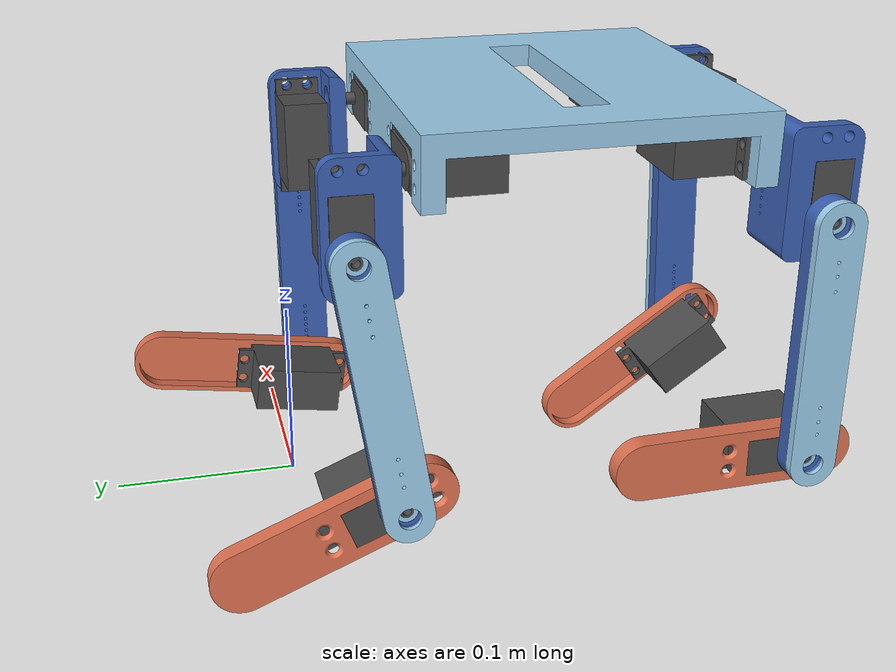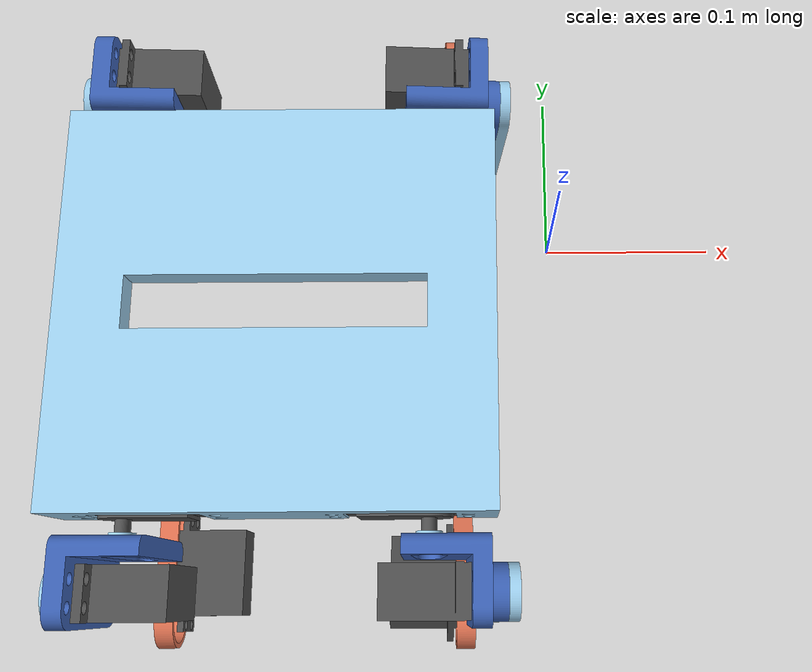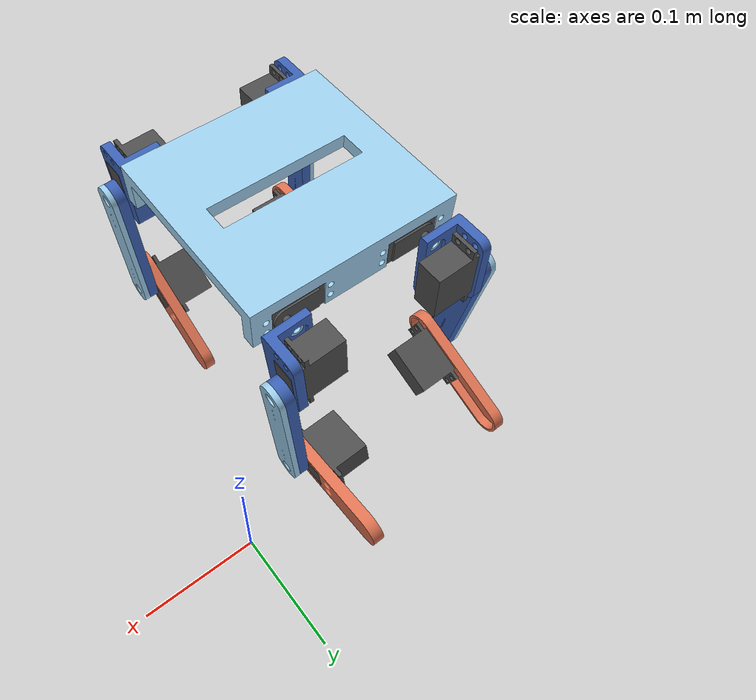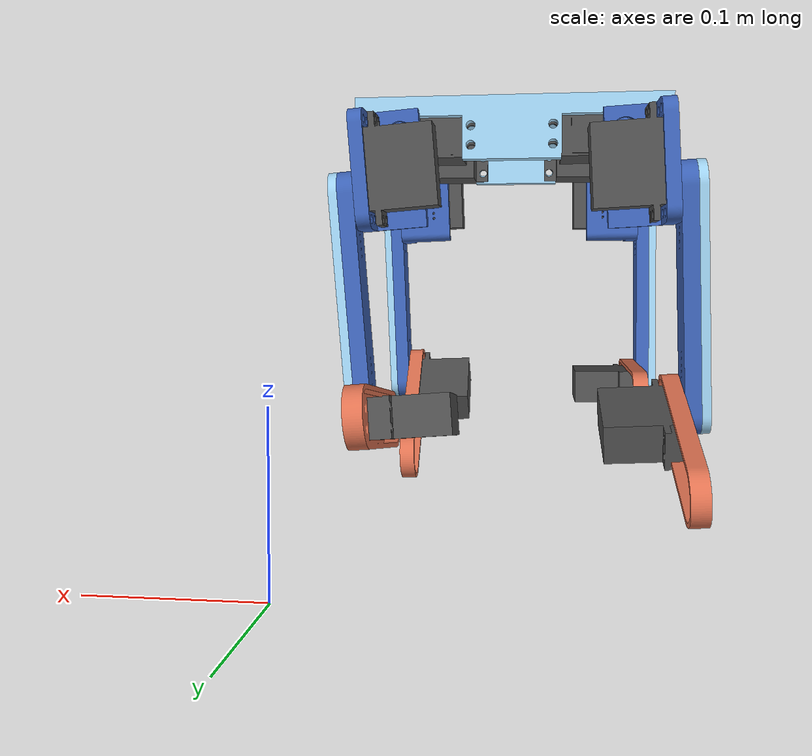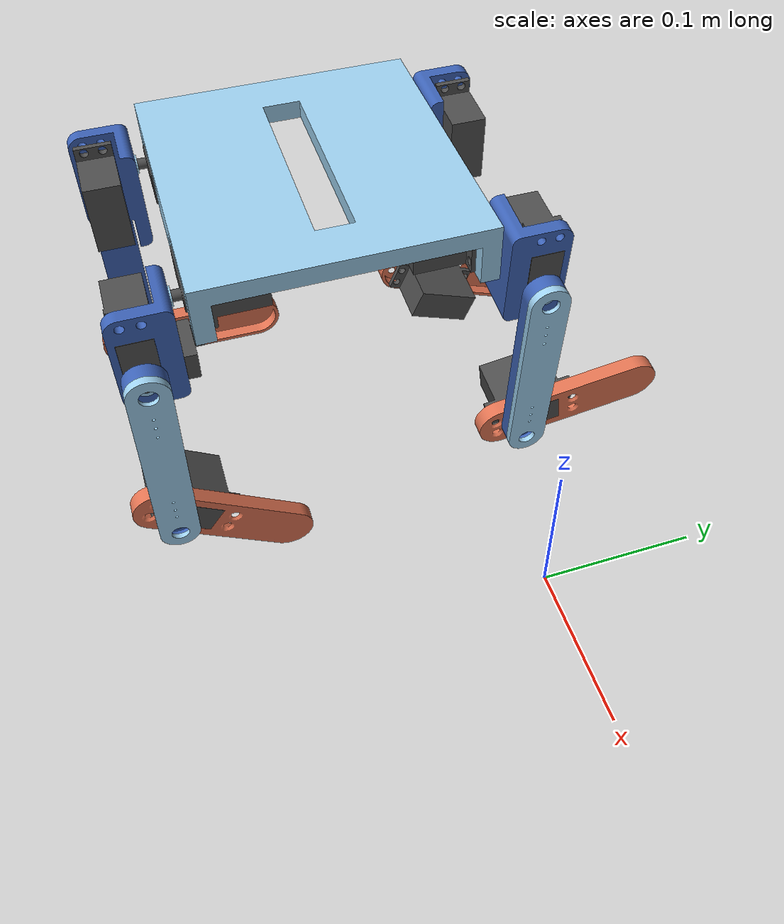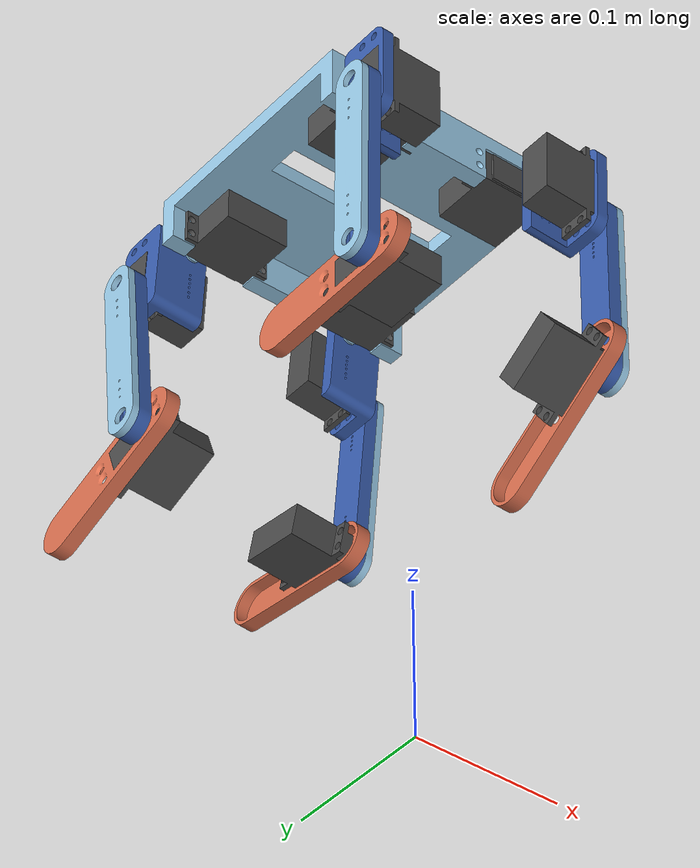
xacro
<?xml version="1.0"?>
<robot xmlns:xacro="http://www.ros.org/wiki/xacro" name="catbot">
    <link name="mainbody">
        <visual>
            <origin xyz="-0.039050405919551792189 -0.1803153499960899464 0.25655598676204682818" rpy="3.141592653589793116 -8.3266726846886728206e-17 3.141592653589793116" />
            <geometry>
                <mesh filename="base.stl"/>
            </geometry>
            <material name="base_material">
                <color rgba="0.61568627450980395466 0.81176470588235294379 0.92941176470588238168 1.0"/>
            </material>
        </visual>
        <collision>
            <origin xyz="-0.039050405919551792189 -0.1803153499960899464 0.25655598676204682818" rpy="3.141592653589793116 -8.3266726846886728206e-17 3.141592653589793116" />
            <geometry>
                <mesh filename="base.stl"/>
            </geometry>
        </collision>
        <visual>
            <origin xyz="-0.16405040591955188933 -0.1405903499960899361 0.23555598676204680952" rpy="0 8.3266726846886728206e-17 0" />
            <geometry>
                <mesh filename="servo.stl"/>
            </geometry>
            <material name="servo_material">
                <color rgba="0.30196078431372547213 0.30196078431372547213 0.30196078431372547213 1.0"/>
            </material>
        </visual>
        <collision>
            <origin xyz="-0.16405040591955188933 -0.1405903499960899361 0.23555598676204680952" rpy="0 8.3266726846886728206e-17 0" />
            <geometry>
                <mesh filename="servo.stl"/>
            </geometry>
        </collision>
        <visual>
            <origin xyz="-0.16405040591955183382 -0.070040349996089934503 0.23555598676204680952" rpy="3.141592653589793116 8.326672684688671588e-17 1.2325951644078224615e-32" />
            <geometry>
                <mesh filename="servo.stl"/>
            </geometry>
            <material name="servo_material">
                <color rgba="0.30196078431372547213 0.30196078431372547213 0.30196078431372547213 1.0"/>
            </material>
        </visual>
        <collision>
            <origin xyz="-0.16405040591955183382 -0.070040349996089934503 0.23555598676204680952" rpy="3.141592653589793116 8.326672684688671588e-17 1.2325951644078224615e-32" />
            <geometry>
                <mesh filename="servo.stl"/>
            </geometry>
        </collision>
        <visual>
            <origin xyz="-0.074050405919551823275 -0.070040349996089962259 0.23555598676204683728" rpy="8.5528470722950151288e-48 -8.3266726846886691228e-17 -3.141592653589793116" />
            <geometry>
                <mesh filename="servo.stl"/>
            </geometry>
            <material name="servo_material">
                <color rgba="0.30196078431372547213 0.30196078431372547213 0.30196078431372547213 1.0"/>
            </material>
        </visual>
        <collision>
            <origin xyz="-0.074050405919551823275 -0.070040349996089962259 0.23555598676204683728" rpy="8.5528470722950151288e-48 -8.3266726846886691228e-17 -3.141592653589793116" />
            <geometry>
                <mesh filename="servo.stl"/>
            </geometry>
        </collision>
        <visual>
            <origin xyz="-0.074050405919551823275 -0.1405903499960899361 0.23555598676204680952" rpy="3.141592653589793116 -8.3266726846886728206e-17 3.141592653589793116" />
            <geometry>
                <mesh filename="servo.stl"/>
            </geometry>
            <material name="servo_material">
                <color rgba="0.30196078431372547213 0.30196078431372547213 0.30196078431372547213 1.0"/>
            </material>
        </visual>
        <collision>
            <origin xyz="-0.074050405919551823275 -0.1405903499960899361 0.23555598676204680952" rpy="3.141592653589793116 -8.3266726846886728206e-17 3.141592653589793116" />
            <geometry>
                <mesh filename="servo.stl"/>
            </geometry>
        </collision>
        <inertial>
            <origin xyz="-0.11905040591955190488 -0.10531534999608997694 0.24437579780986765088" rpy="0 0 0"/>
            <mass value="0.49394823622559713705" />
            <inertia ixx="0.0013840746330419674819" ixy="-1.084202172485504434e-19" ixz="7.7927031147395631194e-20" iyy="0.0011298530871705141868" iyz="-6.7762635780344027125e-21" izz="0.0024313774487411490312" />
        </inertial>
    </link>

    <link name="hipsubasm">
        <visual>
            <origin xyz="0.009999999999999995004 -0.017290000000000027569 -0.016249999999999986677" rpy="-1.570796326794896558 -1.570796326794896336 0" />
            <geometry>
                <mesh filename="hipjoint.stl"/>
            </geometry>
            <material name="hipjoint_material">
                <color rgba="0.2313725490196078538 0.38039215686274507888 0.7058823529411765163 1.0"/>
            </material>
        </visual>
        <collision>
            <origin xyz="0.009999999999999995004 -0.017290000000000027569 -0.016249999999999986677" rpy="-1.570796326794896558 -1.570796326794896336 0" />
            <geometry>
                <mesh filename="hipjoint.stl"/>
            </geometry>
        </collision>
        <visual>
            <origin xyz="0.018199999999999022515 -0.018114999999999603641 -0.019999999999999962252" rpy="3.1415926535897926719 -1.4578757702189871054e-16 1.5707963267948981123" />
            <geometry>
                <mesh filename="servo.stl"/>
            </geometry>
            <material name="servo_material">
                <color rgba="0.30196078431372547213 0.30196078431372547213 0.30196078431372547213 1.0"/>
            </material>
        </visual>
        <collision>
            <origin xyz="0.018199999999999022515 -0.018114999999999603641 -0.019999999999999962252" rpy="3.1415926535897926719 -1.4578757702189871054e-16 1.5707963267948981123" />
            <geometry>
                <mesh filename="servo.stl"/>
            </geometry>
        </collision>
        <visual>
            <origin xyz="-1.3877787807814456755e-17 -2.7755575615628913511e-17 0.0010000000000000008882" rpy="3.141592653589793116 -1.4578757702189525927e-16 1.5707963267948976682" />
            <geometry>
                <mesh filename="servohornreplacement.stl"/>
            </geometry>
            <material name="servohornreplacement_material">
                <color rgba="0.61568627450980395466 0.81176470588235294379 0.92941176470588238168 1.0"/>
            </material>
        </visual>
        <collision>
            <origin xyz="-1.3877787807814456755e-17 -2.7755575615628913511e-17 0.0010000000000000008882" rpy="3.141592653589793116 -1.4578757702189525927e-16 1.5707963267948976682" />
            <geometry>
                <mesh filename="servohornreplacement.stl"/>
            </geometry>
        </collision>
        <inertial>
            <origin xyz="-0.0044848749450654163545 -0.0179728161393723114 -0.016098061730134432396" rpy="0 0 0"/>
            <mass value="0.066123103332140956145" />
            <inertia ixx="1.8384618926580121391e-05" ixy="9.1018315654018470232e-08" ixz="5.6546937137399404566e-07" iyy="1.4043653005047446121e-05" iyz="-8.5254427329847590665e-08" izz="2.2086490787454833752e-05" />
        </inertial>
    </link>

    <link name="toplegasm">
        <visual>
            <origin xyz="2.7755575615628913511e-17 2.7755575615628913511e-17 -0.0057999999999999926614" rpy="6.4535680925625176344e-18 1.1053377210876282197e-19 -1.1334232708083540627e-18" />
            <geometry>
                <mesh filename="servohornreplacement.stl"/>
            </geometry>
            <material name="servohornreplacement_material">
                <color rgba="0.61568627450980395466 0.81176470588235294379 0.92941176470588238168 1.0"/>
            </material>
        </visual>
        <collision>
            <origin xyz="2.7755575615628913511e-17 2.7755575615628913511e-17 -0.0057999999999999926614" rpy="6.4535680925625176344e-18 1.1053377210876282197e-19 -1.1334232708083540627e-18" />
            <geometry>
                <mesh filename="servohornreplacement.stl"/>
            </geometry>
        </collision>
        <visual>
            <origin xyz="-2.7755575615628913511e-17 0.055999999999999994227 -0.0078999999999999695466" rpy="1.5707963267949027752 9.7283936021392146528e-17 4.2901527244577466862e-16" />
            <geometry>
                <mesh filename="toplegcover.stl"/>
            </geometry>
            <material name="toplegcover_material">
                <color rgba="0.61568627450980395466 0.81176470588235294379 0.92941176470588238168 1.0"/>
            </material>
        </visual>
        <collision>
            <origin xyz="-2.7755575615628913511e-17 0.055999999999999994227 -0.0078999999999999695466" rpy="1.5707963267949027752 9.7283936021392146528e-17 4.2901527244577466862e-16" />
            <geometry>
                <mesh filename="toplegcover.stl"/>
            </geometry>
        </collision>
        <visual>
            <origin xyz="-2.7755575615628913511e-17 0.11199999999999990519 -0.0057999999999999371503" rpy="-2.8269602114824775556e-16 -1.0911851513935710802e-15 -7.0458042872546368885e-16" />
            <geometry>
                <mesh filename="servohornreplacement.stl"/>
            </geometry>
            <material name="servohornreplacement_material">
                <color rgba="0.61568627450980395466 0.81176470588235294379 0.92941176470588238168 1.0"/>
            </material>
        </visual>
        <collision>
            <origin xyz="-2.7755575615628913511e-17 0.11199999999999990519 -0.0057999999999999371503" rpy="-2.8269602114824775556e-16 -1.0911851513935710802e-15 -7.0458042872546368885e-16" />
            <geometry>
                <mesh filename="servohornreplacement.stl"/>
            </geometry>
        </collision>
        <visual>
            <origin xyz="2.7755575615628913511e-17 0.055999999999999966471 -0.0078999999999999695466" rpy="4.7127242992031974377e-16 9.8319183968485824968e-17 4.3206131669943434475e-16" />
            <geometry>
                <mesh filename="topleg.stl"/>
            </geometry>
            <material name="topleg_material">
                <color rgba="0.2313725490196078538 0.38039215686274507888 0.7058823529411765163 1.0"/>
            </material>
        </visual>
        <collision>
            <origin xyz="2.7755575615628913511e-17 0.055999999999999966471 -0.0078999999999999695466" rpy="4.7127242992031974377e-16 9.8319183968485824968e-17 4.3206131669943434475e-16" />
            <geometry>
                <mesh filename="topleg.stl"/>
            </geometry>
        </collision>
        <inertial>
            <origin xyz="1.3736162901867244619e-17 0.05599999999999997341 -0.0036685463244520771439" rpy="0 0 0"/>
            <mass value="0.025684018857765292254" />
            <inertia ixx="3.3957308422224581862e-05" ixy="1.4605197478834002945e-20" ixz="-1.4471443186448996313e-20" iyy="1.2113689959083558375e-06" iyz="-2.2765166865918425964e-20" izz="3.4913600077066402234e-05" />
        </inertial>
    </link>

    <link name="botlegasm">
        <visual>
            <origin xyz="0.010149999999999992362 1.3877787807814456755e-17 -0.040450000000000006783" rpy="-1.570796326794896558 1.8065148292601759323e-18 3.2327904654336294772e-17" />
            <geometry>
                <mesh filename="servo.stl"/>
            </geometry>
            <material name="servo_material">
                <color rgba="0.30196078431372547213 0.30196078431372547213 0.30196078431372547213 1.0"/>
            </material>
        </visual>
        <collision>
            <origin xyz="0.010149999999999992362 1.3877787807814456755e-17 -0.040450000000000006783" rpy="-1.570796326794896558 1.8065148292601759323e-18 3.2327904654336294772e-17" />
            <geometry>
                <mesh filename="servo.stl"/>
            </geometry>
        </collision>
        <visual>
            <origin xyz="0.031674480000000004853 -6.9388939039072283776e-18 2.5000000000004185541e-05" rpy="1.5707963267948972241 6.736598363117247075e-18 -1.570796326794896558" />
            <geometry>
                <mesh filename="botleg.stl"/>
            </geometry>
            <material name="botleg_material">
                <color rgba="0.87450980392156862919 0.44705882352941178626 0.31764705882352939348 1.0"/>
            </material>
        </visual>
        <collision>
            <origin xyz="0.031674480000000004853 -6.9388939039072283776e-18 2.5000000000004185541e-05" rpy="1.5707963267948972241 6.736598363117247075e-18 -1.570796326794896558" />
            <geometry>
                <mesh filename="botleg.stl"/>
            </geometry>
        </collision>
        <inertial>
            <origin xyz="0.014355235822870536511 3.4914390159032126384e-12 -0.017241727750089003157" rpy="0 0 0"/>
            <mass value="0.054645620986758416948" />
            <inertia ixx="1.0916296677110458714e-05" ixy="7.8802063165292541799e-16" ixz="-3.3092987108633480716e-06" iyy="3.0288527521158881335e-05" iyz="-3.1738908324763525493e-15" izz="2.4422062954015746769e-05" />
        </inertial>
    </link>

    <joint name="BR_BotLeg" type="revolute">
        <origin xyz="-2.7755575615628913511e-17 0.11199999999999990519 5.5511151231257827021e-17" rpy="-3.1415926535897886751 -7.0938256185667662878e-15 0.58170270124798439948" />
        <parent link="toplegasm" />
        <child link="botlegasm" />
        <axis xyz="0 0 1"/>
        <limit effort="1" velocity="20" />
        <joint_properties friction="0.0"/>
    </joint>

    <joint name="BR_TopLeg" type="revolute">
        <origin xyz="-0.022249999999999943434 -0.028264999999999401714 -0.019999999999999990008" rpy="-1.5707963267948958919 -1.5476780753609129526 -1.5707963267949160979" />
        <parent link="hipsubasm" />
        <child link="toplegasm" />
        <axis xyz="0 0 1"/>
        <limit effort="1" velocity="20" lower="-1.570796326794896558" upper="1.570796326794896558"/>
        <joint_properties friction="0.0"/>
    </joint>

    <joint name="BR_Hip" type="revolute">
        <origin xyz="-0.063900405919551844791 -0.18684034999608994942 0.23555598676204686504" rpy="1.570796326794896558 -0.041547970194335065441 3.141592653589793116" />
        <parent link="mainbody" />
        <child link="hipsubasm" />
        <axis xyz="0 0 1"/>
        <limit effort="1" velocity="20" lower="-0.785398163397448279" upper="0.785398163397448279"/>
        <joint_properties friction="0.0"/>
    </joint>

    <link name="mirroredhipsubasm">
        <visual>
            <origin xyz="0.018199999999999966205 0.018114999999999936708 -0.020000000000000017764" rpy="-2.6082961837183532655e-16 -1.7701259958948961988e-16 -1.5707963267948961139" />
            <geometry>
                <mesh filename="servo.stl"/>
            </geometry>
            <material name="servo_material">
                <color rgba="0.30196078431372547213 0.30196078431372547213 0.30196078431372547213 1.0"/>
            </material>
        </visual>
        <collision>
            <origin xyz="0.018199999999999966205 0.018114999999999936708 -0.020000000000000017764" rpy="-2.6082961837183532655e-16 -1.7701259958948961988e-16 -1.5707963267948961139" />
            <geometry>
                <mesh filename="servo.stl"/>
            </geometry>
        </collision>
        <visual>
            <origin xyz="0.0099999999999999811262 0.017289999999999972058 -0.023749999999999993339" rpy="1.570796326794896558 1.570796326794896336 0" />
            <geometry>
                <mesh filename="mirrorhipjoint.stl"/>
            </geometry>
            <material name="mirrorhipjoint_material">
                <color rgba="0.2313725490196078538 0.38039215686274507888 0.7058823529411765163 1.0"/>
            </material>
        </visual>
        <collision>
            <origin xyz="0.0099999999999999811262 0.017289999999999972058 -0.023749999999999993339" rpy="1.570796326794896558 1.570796326794896336 0" />
            <geometry>
                <mesh filename="mirrorhipjoint.stl"/>
            </geometry>
        </collision>
        <visual>
            <origin xyz="0 -2.7755575615628913511e-17 0.0010000000000000286438" rpy="-3.1415926535897926719 9.9992864631340462803e-17 3.141592653589793116" />
            <geometry>
                <mesh filename="servohornreplacement.stl"/>
            </geometry>
            <material name="servohornreplacement_material">
                <color rgba="0.61568627450980395466 0.81176470588235294379 0.92941176470588238168 1.0"/>
            </material>
        </visual>
        <collision>
            <origin xyz="0 -2.7755575615628913511e-17 0.0010000000000000286438" rpy="-3.1415926535897926719 9.9992864631340462803e-17 3.141592653589793116" />
            <geometry>
                <mesh filename="servohornreplacement.stl"/>
            </geometry>
        </collision>
        <inertial>
            <origin xyz="-0.0044848749450651335946 0.017972816139372491812 -0.016098061730134460151" rpy="0 0 0"/>
            <mass value="0.066123103332140956145" />
            <inertia ixx="1.8384618926580538131e-05" ixy="-9.101831565405955133e-08" ixz="5.654693713740800195e-07" iyy="1.4043653005047930624e-05" iyz="8.5254427329908709386e-08" izz="2.2086490787454935396e-05" />
        </inertial>
    </link>

    <link name="toplegasm_2">
        <visual>
            <origin xyz="0 2.7755575615628913511e-17 -0.0057999999999999996003" rpy="-8.7266791005281888125e-19 3.0532008149613898383e-32 2.0260783014953721174e-31" />
            <geometry>
                <mesh filename="servohornreplacement.stl"/>
            </geometry>
            <material name="servohornreplacement_material">
                <color rgba="0.61568627450980395466 0.81176470588235294379 0.92941176470588238168 1.0"/>
            </material>
        </visual>
        <collision>
            <origin xyz="0 2.7755575615628913511e-17 -0.0057999999999999996003" rpy="-8.7266791005281888125e-19 3.0532008149613898383e-32 2.0260783014953721174e-31" />
            <geometry>
                <mesh filename="servohornreplacement.stl"/>
            </geometry>
        </collision>
        <visual>
            <origin xyz="8.3266726846886740532e-17 0.056000000000000382805 -0.0078999999999998515854" rpy="1.5707963267948996666 -5.4942891350651959144e-18 1.8059105904150631138e-18" />
            <geometry>
                <mesh filename="toplegcover.stl"/>
            </geometry>
            <material name="toplegcover_material">
                <color rgba="0.61568627450980395466 0.81176470588235294379 0.92941176470588238168 1.0"/>
            </material>
        </visual>
        <collision>
            <origin xyz="8.3266726846886740532e-17 0.056000000000000382805 -0.0078999999999998515854" rpy="1.5707963267948996666 -5.4942891350651959144e-18 1.8059105904150631138e-18" />
            <geometry>
                <mesh filename="toplegcover.stl"/>
            </geometry>
        </collision>
        <visual>
            <origin xyz="1.9428902930940239457e-16 0.11200000000000062683 -0.0057999999999996110223" rpy="3.5133189178907857781e-15 7.0556949157424066037e-21 3.469768556812397091e-18" />
            <geometry>
                <mesh filename="servohornreplacement.stl"/>
            </geometry>
            <material name="servohornreplacement_material">
                <color rgba="0.61568627450980395466 0.81176470588235294379 0.92941176470588238168 1.0"/>
            </material>
        </visual>
        <collision>
            <origin xyz="1.9428902930940239457e-16 0.11200000000000062683 -0.0057999999999996110223" rpy="3.5133189178907857781e-15 7.0556949157424066037e-21 3.469768556812397091e-18" />
            <geometry>
                <mesh filename="servohornreplacement.stl"/>
            </geometry>
        </collision>
        <visual>
            <origin xyz="8.3266726846886740532e-17 0.056000000000000327294 -0.0078999999999998238298" rpy="3.5098494709388321639e-15 1.2747625593706508062e-21 1.7348578419795400101e-18" />
            <geometry>
                <mesh filename="topleg.stl"/>
            </geometry>
            <material name="topleg_material">
                <color rgba="0.2313725490196078538 0.38039215686274507888 0.7058823529411765163 1.0"/>
            </material>
        </visual>
        <collision>
            <origin xyz="8.3266726846886740532e-17 0.056000000000000327294 -0.0078999999999998238298" rpy="3.5098494709388321639e-15 1.2747625593706508062e-21 1.7348578419795400101e-18" />
            <geometry>
                <mesh filename="topleg.stl"/>
            </geometry>
        </collision>
        <inertial>
            <origin xyz="7.8537835927160718487e-17 0.056000000000000341172 -0.0036685463244519214525" rpy="0 0 0"/>
            <mass value="0.025684018857765292254" />
            <inertia ixx="3.3957308422224920675e-05" ixy="-2.0629561261755546244e-21" ixz="5.2531036313452856353e-20" iyy="1.2113689959083712958e-06" iyz="-3.7847965899051524873e-21" izz="3.4913600077066578417e-05" />
        </inertial>
    </link>

    <link name="botlegasm_2">
        <visual>
            <origin xyz="0.010149999999999992362 1.3877787807814456755e-17 -0.040449999999999985967" rpy="-1.570796326794896558 8.055100413464512593e-22 1.7056915740222492149e-18" />
            <geometry>
                <mesh filename="servo.stl"/>
            </geometry>
            <material name="servo_material">
                <color rgba="0.30196078431372547213 0.30196078431372547213 0.30196078431372547213 1.0"/>
            </material>
        </visual>
        <collision>
            <origin xyz="0.010149999999999992362 1.3877787807814456755e-17 -0.040449999999999985967" rpy="-1.570796326794896558 8.055100413464512593e-22 1.7056915740222492149e-18" />
            <geometry>
                <mesh filename="servo.stl"/>
            </geometry>
        </collision>
        <visual>
            <origin xyz="0.031674480000000032609 0 2.4999999999997246647e-05" rpy="1.570796326794896558 3.1787495007411310963e-16 -1.570796326794896336" />
            <geometry>
                <mesh filename="botleg.stl"/>
            </geometry>
            <material name="botleg_material">
                <color rgba="0.87450980392156862919 0.44705882352941178626 0.31764705882352939348 1.0"/>
            </material>
        </visual>
        <collision>
            <origin xyz="0.031674480000000032609 0 2.4999999999997246647e-05" rpy="1.570796326794896558 3.1787495007411310963e-16 -1.570796326794896336" />
            <geometry>
                <mesh filename="botleg.stl"/>
            </geometry>
        </collision>
        <inertial>
            <origin xyz="0.01435523582287053998 3.4914399578262060761e-12 -0.017241727750088992749" rpy="0 0 0"/>
            <mass value="0.054645620986758416948" />
            <inertia ixx="1.091629667711044855e-05" ixy="7.8801665499142670343e-16" ixz="-3.3092987108633302839e-06" iyy="3.0288527521159030412e-05" iyz="-3.1738829266149533627e-15" izz="2.4422062954015750157e-05" />
        </inertial>
    </link>

    <joint name="BL_BotLeg" type="revolute">
        <origin xyz="1.9428902930940239457e-16 0.11200000000000062683 3.8857805861880478915e-16" rpy="3.1415926535897926719 -1.0243549092722601103e-15 3.1262445307774839875" />
        <parent link="toplegasm_2" />
        <child link="botlegasm_2" />
        <axis xyz="0 0 1"/>
        <limit effort="1" velocity="20" />
        <joint_properties friction="0.0"/>
    </joint>

    <joint name="BL_TopLeg" type="revolute">
        <origin xyz="-0.022250000000000019762 0.02826499999999992907 -0.020000000000000017764" rpy="1.0152967728242205898e-15 1.5707963267948952257 0" />
        <parent link="mirroredhipsubasm" />
        <child link="toplegasm_2" />
        <axis xyz="0 0 1"/>
        <limit effort="1" velocity="20" lower="-1.570796326794896558" upper="1.570796326794896558"/>
        <joint_properties friction="0.0"/>
    </joint>

    <joint name="BL_Hip" type="revolute">
        <origin xyz="-0.17420040591955210374 -0.18684034999608997718 0.23555598676204667075" rpy="-1.57079632679489678 0.0117328984293165791 1.2601170739682348073e-15" />
        <parent link="mainbody" />
        <child link="mirroredhipsubasm" />
        <axis xyz="0 0 1"/>
        <limit effort="1" velocity="20" lower="-0.785398163397448279" upper="0.785398163397448279"/>
        <joint_properties friction="0.0"/>
    </joint>

    <link name="mirroredhipsubasm_2">
        <visual>
            <origin xyz="0.018199999999999896816 0.018115000000000103242 -0.020000000000000014294" rpy="-2.6082961837181299193e-16 -1.7701259958947004627e-16 -1.570796326794896336" />
            <geometry>
                <mesh filename="servo.stl"/>
            </geometry>
            <material name="servo_material">
                <color rgba="0.30196078431372547213 0.30196078431372547213 0.30196078431372547213 1.0"/>
            </material>
        </visual>
        <collision>
            <origin xyz="0.018199999999999896816 0.018115000000000103242 -0.020000000000000014294" rpy="-2.6082961837181299193e-16 -1.7701259958947004627e-16 -1.570796326794896336" />
            <geometry>
                <mesh filename="servo.stl"/>
            </geometry>
        </collision>
        <visual>
            <origin xyz="0.009999999999999995004 0.017289999999999999813 -0.023750000000000003747" rpy="1.570796326794896558 1.570796326794896336 0" />
            <geometry>
                <mesh filename="mirrorhipjoint.stl"/>
            </geometry>
            <material name="mirrorhipjoint_material">
                <color rgba="0.2313725490196078538 0.38039215686274507888 0.7058823529411765163 1.0"/>
            </material>
        </visual>
        <collision>
            <origin xyz="0.009999999999999995004 0.017289999999999999813 -0.023750000000000003747" rpy="1.570796326794896558 1.570796326794896336 0" />
            <geometry>
                <mesh filename="mirrorhipjoint.stl"/>
            </geometry>
        </collision>
        <visual>
            <origin xyz="-1.3877787807814456755e-17 0 0.00099999999999999741873" rpy="-3.141592653589793116 -8.5063560020394949213e-16 -3.141592653589793116" />
            <geometry>
                <mesh filename="servohornreplacement.stl"/>
            </geometry>
            <material name="servohornreplacement_material">
                <color rgba="0.61568627450980395466 0.81176470588235294379 0.92941176470588238168 1.0"/>
            </material>
        </visual>
        <collision>
            <origin xyz="-1.3877787807814456755e-17 0 0.00099999999999999741873" rpy="-3.141592653589793116 -8.5063560020394949213e-16 -3.141592653589793116" />
            <geometry>
                <mesh filename="servohornreplacement.stl"/>
            </geometry>
        </collision>
        <inertial>
            <origin xyz="-0.0044848749450651778301 0.017972816139372616712 -0.016098061730134460151" rpy="0 0 0"/>
            <mass value="0.066123103332140956145" />
            <inertia ixx="1.8384618926580541519e-05" ixy="-9.1018315654073249441e-08" ixz="5.6546937137406360824e-07" iyy="1.4043653005047911989e-05" iyz="8.5254427329935179166e-08" izz="2.2086490787454918455e-05" />
        </inertial>
    </link>

    <link name="toplegasm_3">
        <visual>
            <origin xyz="0 0 -0.0057999999999999926614" rpy="6.7942467602186101967e-19 8.0579397599774070036e-32 -1.2664528845269139064e-32" />
            <geometry>
                <mesh filename="servohornreplacement.stl"/>
            </geometry>
            <material name="servohornreplacement_material">
                <color rgba="0.61568627450980395466 0.81176470588235294379 0.92941176470588238168 1.0"/>
            </material>
        </visual>
        <collision>
            <origin xyz="0 0 -0.0057999999999999926614" rpy="6.7942467602186101967e-19 8.0579397599774070036e-32 -1.2664528845269139064e-32" />
            <geometry>
                <mesh filename="servohornreplacement.stl"/>
            </geometry>
        </collision>
        <visual>
            <origin xyz="2.4286128663675299322e-17 0.056000000000001437517 -0.0079000000000000458744" rpy="1.5707963267948978903 -1.1134776791955550731e-15 9.2917581050318985147e-17" />
            <geometry>
                <mesh filename="toplegcover.stl"/>
            </geometry>
            <material name="toplegcover_material">
                <color rgba="0.61568627450980395466 0.81176470588235294379 0.92941176470588238168 1.0"/>
            </material>
        </visual>
        <collision>
            <origin xyz="2.4286128663675299322e-17 0.056000000000001437517 -0.0079000000000000458744" rpy="1.5707963267948978903 -1.1134776791955550731e-15 9.2917581050318985147e-17" />
            <geometry>
                <mesh filename="toplegcover.stl"/>
            </geometry>
        </collision>
        <visual>
            <origin xyz="9.5843472047718591966e-17 0.11200000000000286116 -0.0058000000000000065392" rpy="3.4267672224138618857e-15 -3.9512971347930942641e-15 7.9037649853328943305e-17" />
            <geometry>
                <mesh filename="servohornreplacement.stl"/>
            </geometry>
            <material name="servohornreplacement_material">
                <color rgba="0.61568627450980395466 0.81176470588235294379 0.92941176470588238168 1.0"/>
            </material>
        </visual>
        <collision>
            <origin xyz="9.5843472047718591966e-17 0.11200000000000286116 -0.0058000000000000065392" rpy="3.4267672224138618857e-15 -3.9512971347930942641e-15 7.9037649853328943305e-17" />
            <geometry>
                <mesh filename="servohornreplacement.stl"/>
            </geometry>
        </collision>
        <visual>
            <origin xyz="6.8521577301083880229e-17 0.056000000000001437517 -0.0079000000000000528133" rpy="1.2726230873573110323e-15 -1.1134776791955550731e-15 9.2917581050318972821e-17" />
            <geometry>
                <mesh filename="topleg.stl"/>
            </geometry>
            <material name="topleg_material">
                <color rgba="0.2313725490196078538 0.38039215686274507888 0.7058823529411765163 1.0"/>
            </material>
        </visual>
        <collision>
            <origin xyz="6.8521577301083880229e-17 0.056000000000001437517 -0.0079000000000000528133" rpy="1.2726230873573110323e-15 -1.1134776791955550731e-15 9.2917581050318972821e-17" />
            <geometry>
                <mesh filename="topleg.stl"/>
            </geometry>
        </collision>
        <inertial>
            <origin xyz="5.4815080311377476443e-17 0.056000000000001451395 -0.0036685463244520480873" rpy="0 0 0"/>
            <mass value="0.025684018857765292254" />
            <inertia ixx="3.3957308422224663177e-05" ixy="2.0666754946936252272e-21" ixz="2.4445301591710026212e-20" iyy="1.2113689959084200002e-06" iyz="3.3627625392044776383e-20" izz="3.4913600077068258931e-05" />
        </inertial>
    </link>

    <link name="botlegasm_3">
        <visual>
            <origin xyz="0.010150000000000001035 0 -0.040450000000000006783" rpy="-1.570796326794896558 7.6524612521867894126e-19 3.9767968679596653297e-18" />
            <geometry>
                <mesh filename="servo.stl"/>
            </geometry>
            <material name="servo_material">
                <color rgba="0.30196078431372547213 0.30196078431372547213 0.30196078431372547213 1.0"/>
            </material>
        </visual>
        <collision>
            <origin xyz="0.010150000000000001035 0 -0.040450000000000006783" rpy="-1.570796326794896558 7.6524612521867894126e-19 3.9767968679596653297e-18" />
            <geometry>
                <mesh filename="servo.stl"/>
            </geometry>
        </collision>
        <visual>
            <origin xyz="0.031674480000000011792 -1.3877787807814456755e-17 2.5000000000004185541e-05" rpy="1.570796326794896558 -6.7338341974110647865e-18 -1.570796326794896558" />
            <geometry>
                <mesh filename="botleg.stl"/>
            </geometry>
            <material name="botleg_material">
                <color rgba="0.87450980392156862919 0.44705882352941178626 0.31764705882352939348 1.0"/>
            </material>
        </visual>
        <collision>
            <origin xyz="0.031674480000000011792 -1.3877787807814456755e-17 2.5000000000004185541e-05" rpy="1.570796326794896558 -6.7338341974110647865e-18 -1.570796326794896558" />
            <geometry>
                <mesh filename="botleg.stl"/>
            </geometry>
        </collision>
        <inertial>
            <origin xyz="0.014355235822870545184 3.4914256349853136889e-12 -0.017241727750089006627" rpy="0 0 0"/>
            <mass value="0.054645620986758416948" />
            <inertia ixx="1.091629667711045702e-05" ixy="7.8802065449818725101e-16" ixz="-3.3092987108633463775e-06" iyy="3.0288527521158888111e-05" iyz="-3.1738840311530187002e-15" izz="2.4422062954015739993e-05" />
        </inertial>
    </link>

    <joint name="FR_BotLeg" type="revolute">
        <origin xyz="9.4108748571741784872e-17 0.11200000000000287503 3.0531133177191804862e-16" rpy="-3.1415926535897922278 -4.3401406628148288015e-16 -0.14343495739683284618" />
        <parent link="toplegasm_3" />
        <child link="botlegasm_3" />
        <axis xyz="0 0 1"/>
        <limit effort="1" velocity="20" />
        <joint_properties friction="0.0"/>
    </joint>

    <joint name="FR_TopLeg" type="revolute">
        <origin xyz="-0.022250000000000103029 0.028265000000000067848 -0.020000000000000007355" rpy="-2.696149045489602097e-16 1.5707963267948956698 0" />
        <parent link="mirroredhipsubasm_2" />
        <child link="toplegasm_3" />
        <axis xyz="0 0 1"/>
        <limit effort="1" velocity="20" lower="-1.570796326794896558" upper="1.570796326794896558"/>
        <joint_properties friction="0.0"/>
    </joint>

    <joint name="FR_Hip" type="revolute">
        <origin xyz="-0.063900405919551941936 -0.023790349996089938528 0.23555598676204683728" rpy="-1.570796326794896558 -0.082892067804055696856 -3.141592653589793116" />
        <parent link="mainbody" />
        <child link="mirroredhipsubasm_2" />
        <axis xyz="0 0 1"/>
        <limit effort="1" velocity="20" lower="-0.785398163397448279" upper="0.785398163397448279"/>
        <joint_properties friction="0.0"/>
    </joint>

    <link name="hipsubasm_2">
        <visual>
            <origin xyz="0.010000000000000008882 -0.017289999999999999813 -0.016250000000000004025" rpy="-1.570796326794896558 -1.570796326794896336 0" />
            <geometry>
                <mesh filename="hipjoint.stl"/>
            </geometry>
            <material name="hipjoint_material">
                <color rgba="0.2313725490196078538 0.38039215686274507888 0.7058823529411765163 1.0"/>
            </material>
        </visual>
        <collision>
            <origin xyz="0.010000000000000008882 -0.017289999999999999813 -0.016250000000000004025" rpy="-1.570796326794896558 -1.570796326794896336 0" />
            <geometry>
                <mesh filename="hipjoint.stl"/>
            </geometry>
        </collision>
        <visual>
            <origin xyz="0.018199999999999771916 -0.018114999999999853442 -0.020000000000000000416" rpy="3.141592653589793116 -1.7701259958947012023e-16 1.5707963267949021091" />
            <geometry>
                <mesh filename="servo.stl"/>
            </geometry>
            <material name="servo_material">
                <color rgba="0.30196078431372547213 0.30196078431372547213 0.30196078431372547213 1.0"/>
            </material>
        </visual>
        <collision>
            <origin xyz="0.018199999999999771916 -0.018114999999999853442 -0.020000000000000000416" rpy="3.141592653589793116 -1.7701259958947012023e-16 1.5707963267949021091" />
            <geometry>
                <mesh filename="servo.stl"/>
            </geometry>
        </collision>
        <visual>
            <origin xyz="8.3266726846886740532e-17 -8.3266726846886740532e-17 0.00099999999999999741873" rpy="-3.141592653589793116 -2.8675843948170604383e-16 1.5707963267948974462" />
            <geometry>
                <mesh filename="servohornreplacement.stl"/>
            </geometry>
            <material name="servohornreplacement_material">
                <color rgba="0.61568627450980395466 0.81176470588235294379 0.92941176470588238168 1.0"/>
            </material>
        </visual>
        <collision>
            <origin xyz="8.3266726846886740532e-17 -8.3266726846886740532e-17 0.00099999999999999741873" rpy="-3.141592653589793116 -2.8675843948170604383e-16 1.5707963267948974462" />
            <geometry>
                <mesh filename="servohornreplacement.stl"/>
            </geometry>
        </collision>
        <inertial>
            <origin xyz="-0.0044848749450651734932 -0.017972816139372453648 -0.016098061730134456682" rpy="0 0 0"/>
            <mass value="0.066123103332140956145" />
            <inertia ixx="1.8384618926580439875e-05" ixy="9.1018315654003991263e-08" ixz="5.6546937137399923374e-07" iyy="1.4043653005047835756e-05" iyz="-8.5254427329923003067e-08" izz="2.2086490787454908291e-05" />
        </inertial>
    </link>

    <link name="toplegasm_4">
        <visual>
            <origin xyz="0 0 -0.0057999999999999996003" rpy="7.5160013437390121629e-18 -7.6387646900497724963e-20 -1.5053115700625736801e-17" />
            <geometry>
                <mesh filename="servohornreplacement.stl"/>
            </geometry>
            <material name="servohornreplacement_material">
                <color rgba="0.61568627450980395466 0.81176470588235294379 0.92941176470588238168 1.0"/>
            </material>
        </visual>
        <collision>
            <origin xyz="0 0 -0.0057999999999999996003" rpy="7.5160013437390121629e-18 -7.6387646900497724963e-20 -1.5053115700625736801e-17" />
            <geometry>
                <mesh filename="servohornreplacement.stl"/>
            </geometry>
        </collision>
        <visual>
            <origin xyz="2.0816681711721685133e-17 0.055999999999999022782 -0.0079000000000006287415" rpy="1.5707963267948821251 -1.6729811401829660442e-15 -2.6266809264166584501e-16" />
            <geometry>
                <mesh filename="toplegcover.stl"/>
            </geometry>
            <material name="toplegcover_material">
                <color rgba="0.61568627450980395466 0.81176470588235294379 0.92941176470588238168 1.0"/>
            </material>
        </visual>
        <collision>
            <origin xyz="2.0816681711721685133e-17 0.055999999999999022782 -0.0079000000000006287415" rpy="1.5707963267948821251 -1.6729811401829660442e-15 -2.6266809264166584501e-16" />
            <geometry>
                <mesh filename="toplegcover.stl"/>
            </geometry>
        </collision>
        <visual>
            <origin xyz="2.0816681711721685133e-17 0.11199999999999782352 -0.0058000000000013596235" rpy="-3.8631057178554569328e-15 -1.5108548980867523676e-15 -1.5627294902063848932e-15" />
            <geometry>
                <mesh filename="servohornreplacement.stl"/>
            </geometry>
            <material name="servohornreplacement_material">
                <color rgba="0.61568627450980395466 0.81176470588235294379 0.92941176470588238168 1.0"/>
            </material>
        </visual>
        <collision>
            <origin xyz="2.0816681711721685133e-17 0.11199999999999782352 -0.0058000000000013596235" rpy="-3.8631057178554569328e-15 -1.5108548980867523676e-15 -1.5627294902063848932e-15" />
            <geometry>
                <mesh filename="servohornreplacement.stl"/>
            </geometry>
        </collision>
        <visual>
            <origin xyz="2.7755575615628913511e-17 0.055999999999998939515 -0.0079000000000006564971" rpy="-1.2142976704490132923e-14 -1.6867908295571865296e-15 -2.0149246966698327638e-16" />
            <geometry>
                <mesh filename="topleg.stl"/>
            </geometry>
            <material name="topleg_material">
                <color rgba="0.2313725490196078538 0.38039215686274507888 0.7058823529411765163 1.0"/>
            </material>
        </visual>
        <collision>
            <origin xyz="2.7755575615628913511e-17 0.055999999999998939515 -0.0079000000000006564971" rpy="-1.2142976704490132923e-14 -1.6867908295571865296e-15 -2.0149246966698327638e-16" />
            <geometry>
                <mesh filename="topleg.stl"/>
            </geometry>
        </collision>
        <inertial>
            <origin xyz="2.0832920427240510942e-17 0.055999999999998946454 -0.003668546324452771467" rpy="0 0 0"/>
            <mass value="0.025684018857765292254" />
            <inertia ixx="3.3957308422225435671e-05" ixy="-6.5115555069448644326e-21" ixz="9.5339284384694466486e-20" iyy="1.2113689959083113683e-06" iyz="1.9107590002115889317e-20" izz="3.4913600077066226052e-05" />
        </inertial>
    </link>

    <link name="botlegasm_4">
        <visual>
            <origin xyz="0.010149999999999999301 -1.3877787807814456755e-17 -0.040449999999999985967" rpy="-1.570796326794896558 2.4506026367203964676e-18 1.3197822279268751318e-17" />
            <geometry>
                <mesh filename="servo.stl"/>
            </geometry>
            <material name="servo_material">
                <color rgba="0.30196078431372547213 0.30196078431372547213 0.30196078431372547213 1.0"/>
            </material>
        </visual>
        <collision>
            <origin xyz="0.010149999999999999301 -1.3877787807814456755e-17 -0.040449999999999985967" rpy="-1.570796326794896558 2.4506026367203964676e-18 1.3197822279268751318e-17" />
            <geometry>
                <mesh filename="servo.stl"/>
            </geometry>
        </collision>
        <visual>
            <origin xyz="0.031674480000000004853 -4.1633363423443370266e-17 2.4999999999997246647e-05" rpy="1.570796326794896558 4.9951935681386821951e-18 -1.570796326794896558" />
            <geometry>
                <mesh filename="botleg.stl"/>
            </geometry>
            <material name="botleg_material">
                <color rgba="0.87450980392156862919 0.44705882352941178626 0.31764705882352939348 1.0"/>
            </material>
        </visual>
        <collision>
            <origin xyz="0.031674480000000004853 -4.1633363423443370266e-17 2.4999999999997246647e-05" rpy="1.570796326794896558 4.9951935681386821951e-18 -1.570796326794896558" />
            <geometry>
                <mesh filename="botleg.stl"/>
            </geometry>
        </collision>
        <inertial>
            <origin xyz="0.01435523582287054345 3.491409584334777763e-12 -0.017241727750088992749" rpy="0 0 0"/>
            <mass value="0.054645620986758416948" />
            <inertia ixx="1.0916296677110445162e-05" ixy="7.8802240644793594371e-16" ixz="-3.3092987108633387542e-06" iyy="3.0288527521158867782e-05" iyz="-3.173887956368437763e-15" izz="2.4422062954015821308e-05" />
        </inertial>
    </link>

    <joint name="FL_BotLeg" type="revolute">
        <origin xyz="4.1633363423443370266e-17 0.11199999999999782352 -1.3322676295501878485e-15" rpy="-3.1415926535897784611 4.6425528594852074692e-15 2.9239169939649158891" />
        <parent link="toplegasm_4" />
        <child link="botlegasm_4" />
        <axis xyz="0 0 1"/>
        <limit effort="1" velocity="20" />
        <joint_properties friction="0.0"/>
    </joint>

    <joint name="FL_TopLeg" type="revolute">
        <origin xyz="-0.022249999999999825473 -0.028264999999999845803 -0.020000000000000003886" rpy="1.570796326794896558 -1.4084388595620607187 1.5707963267949249797" />
        <parent link="hipsubasm_2" />
        <child link="toplegasm_4" />
        <axis xyz="0 0 1"/>
        <limit effort="1" velocity="20" lower="-1.570796326794896558" upper="1.570796326794896558"/>
        <joint_properties friction="0.0"/>
    </joint>

    <joint name="FL_Hip" type="revolute">
        <origin xyz="-0.17420040591955185394 -0.023790349996089921181 0.23555598676204680952" rpy="1.570796326794896558 0.053772588985834847419 2.2234000273411940108e-16" />
        <parent link="mainbody" />
        <child link="hipsubasm_2" />
        <axis xyz="0 0 1"/>
        <limit effort="1" velocity="20" lower="-0.785398163397448279" upper="0.785398163397448279"/>
        <joint_properties friction="0.0"/>
    </joint>

    <ros2_control name="CatbotIgnition" type="system">
        <hardware>
            <plugin>ign_ros2_control/IgnitionSystem</plugin>
        </hardware>
        <joint name="BR_BotLeg">
            <command_interface name="position"/>
            <state_interface name="position">
                <param name="initial_value">0.0</param>
            </state_interface>
            <state_interface name="velocity"/>
            <state_interface name="effort"/>
        </joint>
        <joint name="BR_TopLeg">
            <command_interface name="position"/>
            <state_interface name="position">
                <param name="initial_value">0.0</param>
            </state_interface>
            <state_interface name="velocity"/>
            <state_interface name="effort"/>
        </joint>
        <joint name="BR_Hip">
            <command_interface name="position"/>
            <state_interface name="position">
                <param name="initial_value">0.0</param>
            </state_interface>
            <state_interface name="velocity"/>
            <state_interface name="effort"/>
        </joint>

        <joint name="BL_BotLeg">
            <command_interface name="position"/>
            <state_interface name="position">
                <param name="initial_value">0.0</param>
            </state_interface>
            <state_interface name="velocity"/>
            <state_interface name="effort"/>
        </joint>
        <joint name="BL_TopLeg">
            <command_interface name="position"/>
            <state_interface name="position">
                <param name="initial_value">0.0</param>
            </state_interface>
            <state_interface name="velocity"/>
            <state_interface name="effort"/>
        </joint>
        <joint name="BL_Hip">
            <command_interface name="position"/>
            <state_interface name="position">
                <param name="initial_value">0.0</param>
            </state_interface>
            <state_interface name="velocity"/>
            <state_interface name="effort"/>
        </joint>

        <joint name="FR_BotLeg">
            <command_interface name="position"/>
            <state_interface name="position">
                <param name="initial_value">0.0</param>
            </state_interface>
            <state_interface name="velocity"/>
            <state_interface name="effort"/>
        </joint>
        <joint name="FR_TopLeg">
            <command_interface name="position"/>
            <state_interface name="position">
                <param name="initial_value">0.0</param>
            </state_interface>
            <state_interface name="velocity"/>
            <state_interface name="effort"/>
        </joint>
        <joint name="FR_Hip">
            <command_interface name="position"/>
            <state_interface name="position">
                <param name="initial_value">0.0</param>
            </state_interface>
            <state_interface name="velocity"/>
            <state_interface name="effort"/>
        </joint>

        <joint name="FL_BotLeg">
            <command_interface name="position"/>
            <state_interface name="position">
                <param name="initial_value">0.0</param>
            </state_interface>
            <state_interface name="velocity"/>
            <state_interface name="effort"/>
        </joint>
        <joint name="FL_TopLeg">
            <command_interface name="position"/>
            <state_interface name="position">
                <param name="initial_value">0.0</param>
            </state_interface>
            <state_interface name="velocity"/>
            <state_interface name="effort"/>
        </joint>
        <joint name="FL_Hip">
            <command_interface name="position"/>
            <state_interface name="position">
                <param name="initial_value">0.0</param>
            </state_interface>
            <state_interface name="velocity"/>
            <state_interface name="effort"/>
        </joint>
    </ros2_control>

    <gazebo>
        <plugin filename="ign_ros2_control-system" name="ign_ros2_control::IgnitionROS2ControlPlugin">
            <parameters>$(find catbot_sim)/config/catbot_controller.yaml</parameters>
        </plugin>
    </gazebo>
</robot>
